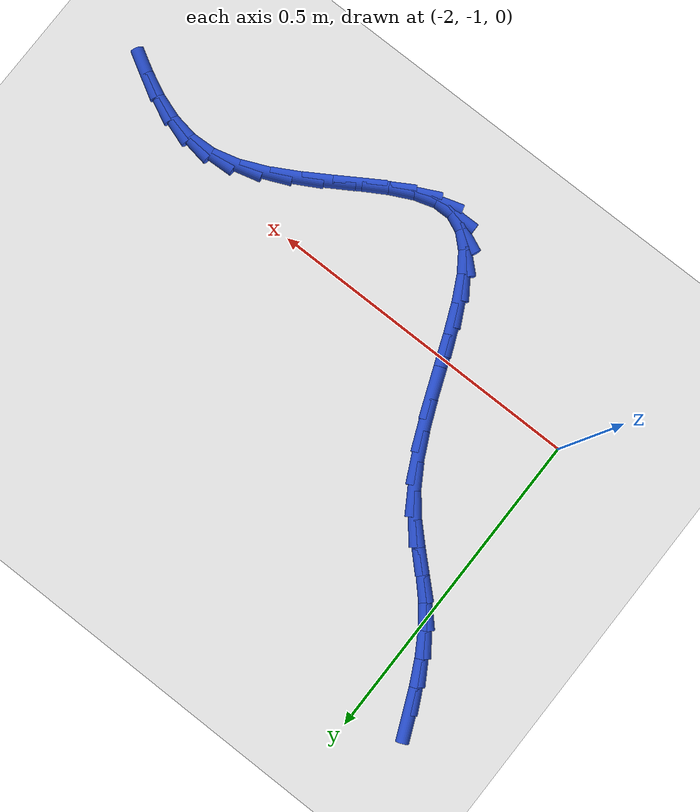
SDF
<sdf version="1.6">
 <world name="default">
  <model name="ground_plane">
   <static>1</static>
   <link name="link">
    <collision name="collision">
     <geometry><plane><normal>0 0 1</normal><size>100 100</size></plane></geometry>
     <surface><friction><ode><mu>100</mu><mu2>50</mu2></ode></friction></surface>
    </collision>
    <visual name="visual">
     <cast_shadows>0</cast_shadows>
     <geometry><plane><normal>0 0 1</normal><size>100 100</size></plane></geometry>
     <material>
      <script><uri>file://media/materials/scripts/gazebo.material</uri><name>Gazebo/WhiteGlow</name></script>
     </material>
    </visual>
   </link>
  </model>
  <model name="line">
   <link name="link_112">
    <pose>-2.063354849467528 -0.5673003533050993 0.01 0 1.57 -1.1551239945032312</pose>
    <collision name="collision">
     <geometry><cylinder><radius>0.01</radius><length>0.08</length></cylinder></geometry>
    </collision>
    <visual name="visual">
     <material>
      <script><name>Gazebo/Blue</name><uri>file://media/materials/scripts/gazebo.material</uri></script>
     </material>
     <geometry><cylinder><radius>0.01</radius><length>0.08</length></cylinder></geometry>
    </visual>
   </link>
   <link name="link_113">
    <pose>-2.0467311509604635 -0.6049623541198872 0.01 0 1.57 -1.102234582890593</pose>
    <collision name="collision">
     <geometry><cylinder><radius>0.01</radius><length>0.08</length></cylinder></geometry>
    </collision>
    <visual name="visual">
     <material>
      <script><name>Gazebo/Blue</name><uri>file://media/materials/scripts/gazebo.material</uri></script>
     </material>
     <geometry><cylinder><radius>0.01</radius><length>0.08</length></cylinder></geometry>
    </visual>
   </link>
   <link name="link_114">
    <pose>-2.028423181678959 -0.6411328280890163 0.01 0 1.57 -1.0267183966390707</pose>
    <collision name="collision">
     <geometry><cylinder><radius>0.01</radius><length>0.08</length></cylinder></geometry>
    </collision>
    <visual name="visual">
     <material>
      <script><name>Gazebo/Blue</name><uri>file://media/materials/scripts/gazebo.material</uri></script>
     </material>
     <geometry><cylinder><radius>0.01</radius><length>0.08</length></cylinder></geometry>
    </visual>
   </link>
   <link name="link_115">
    <pose>-2.0077861010295983 -0.675244470175852 0.01 0 1.57 -0.9273581581806145</pose>
    <collision name="collision">
     <geometry><cylinder><radius>0.01</radius><length>0.08</length></cylinder></geometry>
    </collision>
    <visual name="visual">
     <material>
      <script><name>Gazebo/Blue</name><uri>file://media/materials/scripts/gazebo.material</uri></script>
     </material>
     <geometry><cylinder><radius>0.01</radius><length>0.08</length></cylinder></geometry>
    </visual>
   </link>
   <link name="link_116">
    <pose>-1.9841750684189674 -0.7067299753437593 0.01 0 1.57 -0.8139729981104128</pose>
    <collision name="collision">
     <geometry><cylinder><radius>0.01</radius><length>0.08</length></cylinder></geometry>
    </collision>
    <visual name="visual">
     <material>
      <script><name>Gazebo/Blue</name><uri>file://media/materials/scripts/gazebo.material</uri></script>
     </material>
     <geometry><cylinder><radius>0.01</radius><length>0.08</length></cylinder></geometry>
    </visual>
   </link>
   <link name="link_117">
    <pose>-1.9571849148093556 -0.7353084249206202 0.01 0 1.57 -0.7566629788877872</pose>
    <collision name="collision">
     <geometry><cylinder><radius>0.01</radius><length>0.08</length></cylinder></geometry>
    </collision>
    <visual name="visual">
     <material>
      <script><name>Gazebo/Blue</name><uri>file://media/materials/scripts/gazebo.material</uri></script>
     </material>
     <geometry><cylinder><radius>0.01</radius><length>0.08</length></cylinder></geometry>
    </visual>
   </link>
   <link name="link_118">
    <pose>-1.9281235320301355 -0.7627458568390493 0.01 0 1.57 -0.7832306311991147</pose>
    <collision name="collision">
     <geometry><cylinder><radius>0.01</radius><length>0.08</length></cylinder></geometry>
    </collision>
    <visual name="visual">
     <material>
      <script><name>Gazebo/Blue</name><uri>file://media/materials/scripts/gazebo.material</uri></script>
     </material>
     <geometry><cylinder><radius>0.01</radius><length>0.08</length></cylinder></geometry>
    </visual>
   </link>
   <link name="link_119">
    <pose>-1.8990443910481725 -0.7916992103237148 0.01 0 1.57 -0.8859096856140066</pose>
    <collision name="collision">
     <geometry><cylinder><radius>0.01</radius><length>0.08</length></cylinder></geometry>
    </collision>
    <visual name="visual">
     <material>
      <script><name>Gazebo/Blue</name><uri>file://media/materials/scripts/gazebo.material</uri></script>
     </material>
     <geometry><cylinder><radius>0.01</radius><length>0.08</length></cylinder></geometry>
    </visual>
   </link>
   <link name="link_120">
    <pose>-1.8719956371236295 -0.8248157128064146 0.01 0 1.57 -1.0158855529334745</pose>
    <collision name="collision">
     <geometry><cylinder><radius>0.01</radius><length>0.08</length></cylinder></geometry>
    </collision>
    <visual name="visual">
     <material>
      <script><name>Gazebo/Blue</name><uri>file://media/materials/scripts/gazebo.material</uri></script>
     </material>
     <geometry><cylinder><radius>0.01</radius><length>0.08</length></cylinder></geometry>
    </visual>
   </link>
   <link name="link_121">
    <pose>-1.8481301773452914 -0.8633156926561876 0.01 0 1.57 -1.1073036550477346</pose>
    <collision name="collision">
     <geometry><cylinder><radius>0.01</radius><length>0.08</length></cylinder></geometry>
    </collision>
    <visual name="visual">
     <material>
      <script><name>Gazebo/Blue</name><uri>file://media/materials/scripts/gazebo.material</uri></script>
     </material>
     <geometry><cylinder><radius>0.01</radius><length>0.08</length></cylinder></geometry>
    </visual>
   </link>
   <link name="link_122">
    <pose>-1.826923389026673 -0.9057457029936442 0.01 0 1.57 -1.163302995053316</pose>
    <collision name="collision">
     <geometry><cylinder><radius>0.01</radius><length>0.08</length></cylinder></geometry>
    </collision>
    <visual name="visual">
     <material>
      <script><name>Gazebo/Blue</name><uri>file://media/materials/scripts/gazebo.material</uri></script>
     </material>
     <geometry><cylinder><radius>0.01</radius><length>0.08</length></cylinder></geometry>
    </visual>
   </link>
   <link name="link_123">
    <pose>-1.8076661814335235 -0.9503582776572866 0.01 0 1.57 -1.1903349512748929</pose>
    <collision name="collision">
     <geometry><cylinder><radius>0.01</radius><length>0.08</length></cylinder></geometry>
    </collision>
    <visual name="visual">
     <material>
      <script><name>Gazebo/Blue</name><uri>file://media/materials/scripts/gazebo.material</uri></script>
     </material>
     <geometry><cylinder><radius>0.01</radius><length>0.08</length></cylinder></geometry>
    </visual>
   </link>
   <link name="link_124">
    <pose>-1.7896494638315947 -0.9954059504856174 0.01 0 1.57 -1.1904634897200297</pose>
    <collision name="collision">
     <geometry><cylinder><radius>0.01</radius><length>0.08</length></cylinder></geometry>
    </collision>
    <visual name="visual">
     <material>
      <script><name>Gazebo/Blue</name><uri>file://media/materials/scripts/gazebo.material</uri></script>
     </material>
     <geometry><cylinder><radius>0.01</radius><length>0.08</length></cylinder></geometry>
    </visual>
   </link>
   <link name="link_125">
    <pose>-1.772164145486636 -1.0391412553171377 0.01 0 1.57 -1.1611234874883973</pose>
    <collision name="collision">
     <geometry><cylinder><radius>0.01</radius><length>0.08</length></cylinder></geometry>
    </collision>
    <visual name="visual">
     <material>
      <script><name>Gazebo/Blue</name><uri>file://media/materials/scripts/gazebo.material</uri></script>
     </material>
     <geometry><cylinder><radius>0.01</radius><length>0.08</length></cylinder></geometry>
    </visual>
   </link>
   <link name="link_126">
    <pose>-1.7545011356643974 -1.079816725990351 0.01 0 1.57 -1.0935105506878242</pose>
    <collision name="collision">
     <geometry><cylinder><radius>0.01</radius><length>0.08</length></cylinder></geometry>
    </collision>
    <visual name="visual">
     <material>
      <script><name>Gazebo/Blue</name><uri>file://media/materials/scripts/gazebo.material</uri></script>
     </material>
     <geometry><cylinder><radius>0.01</radius><length>0.08</length></cylinder></geometry>
    </visual>
   </link>
   <link name="link_127">
    <pose>-1.735951343630629 -1.1156848963437593 0.01 0 1.57 -0.9686781090727109</pose>
    <collision name="collision">
     <geometry><cylinder><radius>0.01</radius><length>0.08</length></cylinder></geometry>
    </collision>
    <visual name="visual">
     <material>
      <script><name>Gazebo/Blue</name><uri>file://media/materials/scripts/gazebo.material</uri></script>
     </material>
     <geometry><cylinder><radius>0.01</radius><length>0.08</length></cylinder></geometry>
    </visual>
   </link>
   <link name="link_128">
    <pose>-1.7158056786510816 -1.1449983002158648 0.01 0 1.57 -0.7522902054193342</pose>
    <collision name="collision">
     <geometry><cylinder><radius>0.01</radius><length>0.08</length></cylinder></geometry>
    </collision>
    <visual name="visual">
     <material>
      <script><name>Gazebo/Blue</name><uri>file://media/materials/scripts/gazebo.material</uri></script>
     </material>
     <geometry><cylinder><radius>0.01</radius><length>0.08</length></cylinder></geometry>
    </visual>
   </link>
   <link name="link_129">
    <pose>-1.6933550499915053 -1.1660094714451692 0.01 0 1.57 -0.40648438802037934</pose>
    <collision name="collision">
     <geometry><cylinder><radius>0.01</radius><length>0.08</length></cylinder></geometry>
    </collision>
    <visual name="visual">
     <material>
      <script><name>Gazebo/Blue</name><uri>file://media/materials/scripts/gazebo.material</uri></script>
     </material>
     <geometry><cylinder><radius>0.01</radius><length>0.08</length></cylinder></geometry>
    </visual>
   </link>
   <link name="link_130">
    <pose>-1.66789036691765 -1.176970943870175 0.01 0 1.57 0.009851185785396874</pose>
    <collision name="collision">
     <geometry><cylinder><radius>0.01</radius><length>0.08</length></cylinder></geometry>
    </collision>
    <visual name="visual">
     <material>
      <script><name>Gazebo/Blue</name><uri>file://media/materials/scripts/gazebo.material</uri></script>
     </material>
     <geometry><cylinder><radius>0.01</radius><length>0.08</length></cylinder></geometry>
    </visual>
   </link>
   <link name="link_131">
    <pose>-1.6388696264228366 -1.1766850459154665 0.01 0 1.57 0.29985800605501955</pose>
    <collision name="collision">
     <geometry><cylinder><radius>0.01</radius><length>0.08</length></cylinder></geometry>
    </collision>
    <visual name="visual">
     <material>
      <script><name>Gazebo/Blue</name><uri>file://media/materials/scripts/gazebo.material</uri></script>
     </material>
     <geometry><cylinder><radius>0.01</radius><length>0.08</length></cylinder></geometry>
    </visual>
   </link>
   <link name="link_132">
    <pose>-1.6065864570855914 -1.1667037138205525 0.01 0 1.57 0.45840721378909394</pose>
    <collision name="collision">
     <geometry><cylinder><radius>0.01</radius><length>0.08</length></cylinder></geometry>
    </collision>
    <visual name="visual">
     <material>
      <script><name>Gazebo/Blue</name><uri>file://media/materials/scripts/gazebo.material</uri></script>
     </material>
     <geometry><cylinder><radius>0.01</radius><length>0.08</length></cylinder></geometry>
    </visual>
   </link>
   <link name="link_133">
    <pose>-1.5715951827855275 -1.1494366898843018 0.01 0 1.57 0.5375583194577214</pose>
    <collision name="collision">
     <geometry><cylinder><radius>0.01</radius><length>0.08</length></cylinder></geometry>
    </collision>
    <visual name="visual">
     <material>
      <script><name>Gazebo/Blue</name><uri>file://media/materials/scripts/gazebo.material</uri></script>
     </material>
     <geometry><cylinder><radius>0.01</radius><length>0.08</length></cylinder></geometry>
    </visual>
   </link>
   <link name="link_134">
    <pose>-1.534450213506673 -1.1272939997282565 0.01 0 1.57 0.5658634046395433</pose>
    <collision name="collision">
     <geometry><cylinder><radius>0.01</radius><length>0.08</length></cylinder></geometry>
    </collision>
    <visual name="visual">
     <material>
      <script><name>Gazebo/Blue</name><uri>file://media/materials/scripts/gazebo.material</uri></script>
     </material>
     <geometry><cylinder><radius>0.01</radius><length>0.08</length></cylinder></geometry>
    </visual>
   </link>
   <link name="link_135">
    <pose>-1.4957059592330575 -1.102685668973959 0.01 0 1.57 0.5548992431258931</pose>
    <collision name="collision">
     <geometry><cylinder><radius>0.01</radius><length>0.08</length></cylinder></geometry>
    </collision>
    <visual name="visual">
     <material>
      <script><name>Gazebo/Blue</name><uri>file://media/materials/scripts/gazebo.material</uri></script>
     </material>
     <geometry><cylinder><radius>0.01</radius><length>0.08</length></cylinder></geometry>
    </visual>
   </link>
   <link name="link_136">
    <pose>-1.4559168299487097 -1.0780217232429519 0.01 0 1.57 0.5058072116382909</pose>
    <collision name="collision">
     <geometry><cylinder><radius>0.01</radius><length>0.08</length></cylinder></geometry>
    </collision>
    <visual name="visual">
     <material>
      <script><name>Gazebo/Blue</name><uri>file://media/materials/scripts/gazebo.material</uri></script>
     </material>
     <geometry><cylinder><radius>0.01</radius><length>0.08</length></cylinder></geometry>
    </visual>
   </link>
   <link name="link_137">
    <pose>-1.415637235637659 -1.0557121881567777 0.01 0 1.57 0.41138212506260524</pose>
    <collision name="collision">
     <geometry><cylinder><radius>0.01</radius><length>0.08</length></cylinder></geometry>
    </collision>
    <visual name="visual">
     <material>
      <script><name>Gazebo/Blue</name><uri>file://media/materials/scripts/gazebo.material</uri></script>
     </material>
     <geometry><cylinder><radius>0.01</radius><length>0.08</length></cylinder></geometry>
    </visual>
   </link>
   <link name="link_138">
    <pose>-1.3754215862839345 -1.0381670893369785 0.01 0 1.57 0.25615229950031243</pose>
    <collision name="collision">
     <geometry><cylinder><radius>0.01</radius><length>0.08</length></cylinder></geometry>
    </collision>
    <visual name="visual">
     <material>
      <script><name>Gazebo/Blue</name><uri>file://media/materials/scripts/gazebo.material</uri></script>
     </material>
     <geometry><cylinder><radius>0.01</radius><length>0.08</length></cylinder></geometry>
    </visual>
   </link>
   <link name="link_139">
    <pose>-1.335824265665716 -1.027796323709705 0.01 0 1.57 0.04038843680188553</pose>
    <collision name="collision">
     <geometry><cylinder><radius>0.01</radius><length>0.08</length></cylinder></geometry>
    </collision>
    <visual name="visual">
     <material>
      <script><name>Gazebo/Blue</name><uri>file://media/materials/scripts/gazebo.material</uri></script>
     </material>
     <geometry><cylinder><radius>0.01</radius><length>0.08</length></cylinder></geometry>
    </visual>
   </link>
   <link name="link_140">
    <pose>-1.2972423402713187 -1.0262372122076955 0.01 0 1.57 -0.16540982060677778</pose>
    <collision name="collision">
     <geometry><cylinder><radius>0.01</radius><length>0.08</length></cylinder></geometry>
    </collision>
    <visual name="visual">
     <material>
      <script><name>Gazebo/Blue</name><uri>file://media/materials/scripts/gazebo.material</uri></script>
     </material>
     <geometry><cylinder><radius>0.01</radius><length>0.08</length></cylinder></geometry>
    </visual>
   </link>
   <link name="link_141">
    <pose>-1.2595441169124035 -1.0325303679712619 0.01 0 1.57 -0.3287450636942899</pose>
    <collision name="collision">
     <geometry><cylinder><radius>0.01</radius><length>0.08</length></cylinder></geometry>
    </collision>
    <visual name="visual">
     <material>
      <script><name>Gazebo/Blue</name><uri>file://media/materials/scripts/gazebo.material</uri></script>
     </material>
     <geometry><cylinder><radius>0.01</radius><length>0.08</length></cylinder></geometry>
    </visual>
   </link>
   <link name="link_142">
    <pose>-1.222486932411501 -1.0451714370257439 0.01 0 1.57 -0.4450428144171005</pose>
    <collision name="collision">
     <geometry><cylinder><radius>0.01</radius><length>0.08</length></cylinder></geometry>
    </collision>
    <visual name="visual">
     <material>
      <script><name>Gazebo/Blue</name><uri>file://media/materials/scripts/gazebo.material</uri></script>
     </material>
     <geometry><cylinder><radius>0.01</radius><length>0.08</length></cylinder></geometry>
    </visual>
   </link>
   <link name="link_143">
    <pose>-1.1858281235911396 -1.0626560653964805 0.01 0 1.57 -0.5184213890016731</pose>
    <collision name="collision">
     <geometry><cylinder><radius>0.01</radius><length>0.08</length></cylinder></geometry>
    </collision>
    <visual name="visual">
     <material>
      <script><name>Gazebo/Blue</name><uri>file://media/materials/scripts/gazebo.material</uri></script>
     </material>
     <geometry><cylinder><radius>0.01</radius><length>0.08</length></cylinder></geometry>
    </visual>
   </link>
  </model>
 </world>
</sdf>
